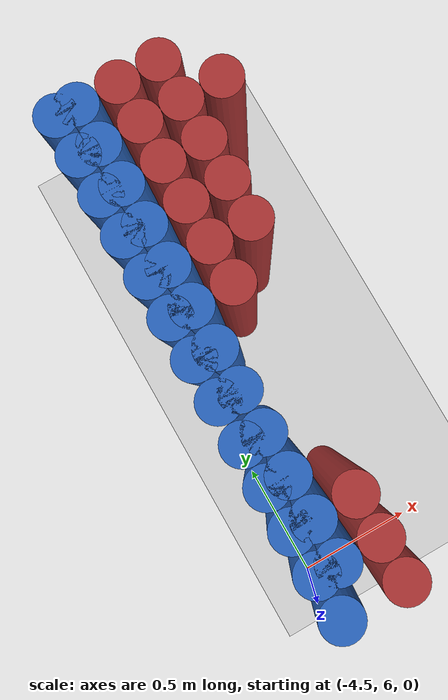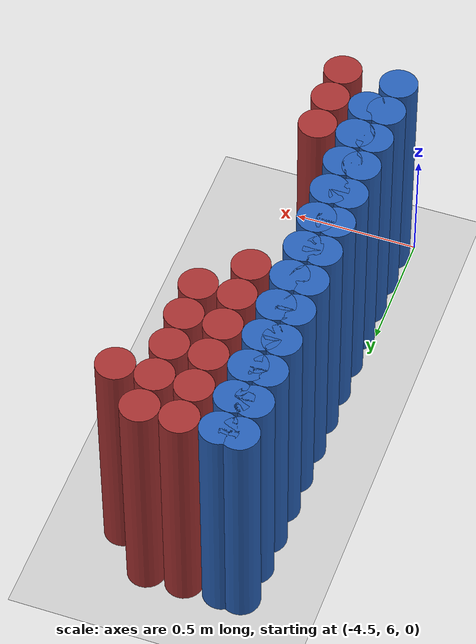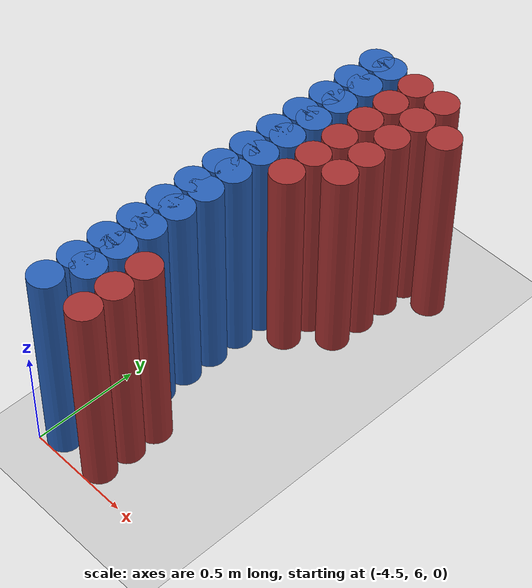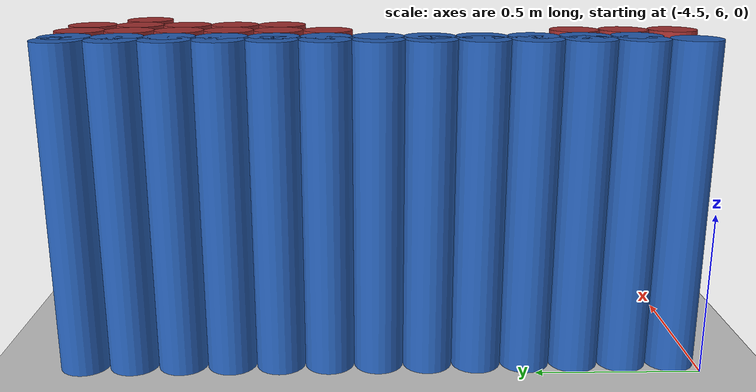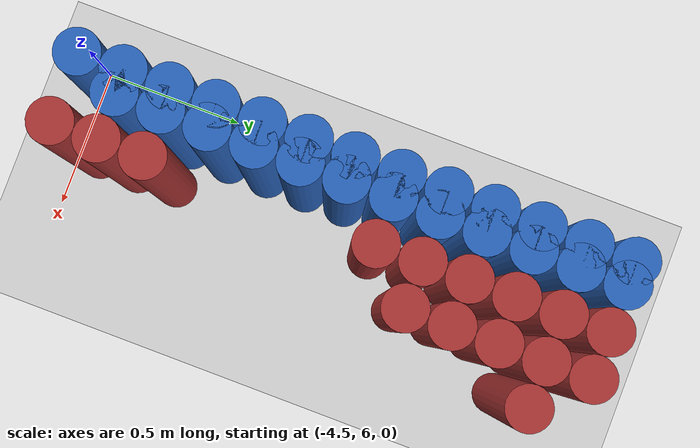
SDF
<sdf version="1.6">
 <world name="barn_world">
  <model name="ground_plane">
   <static>1</static>
   <link name="link">
    <collision name="collision">
     <geometry><plane><normal>0 0 1</normal><size>100 100</size></plane></geometry>
    </collision>
    <visual name="visual">
     <geometry><plane><normal>0 0 1</normal><size>100 100</size></plane></geometry>
     <material>
      <script><uri>file://media/materials/scripts/gazebo.material</uri><name>Gazebo/Grey</name></script>
     </material>
    </visual>
   </link>
  </model>
  <model name="unit_cylinder_133">
   <static>1</static>
   <pose>-4.3500 6.2250 0.5 0 0 0</pose>
   <link name="link">
    <collision name="collision">
     <geometry><cylinder><radius>0.075</radius><length>1</length></cylinder></geometry>
    </collision>
    <visual name="visual">
     <geometry><cylinder><radius>0.075</radius><length>1</length></cylinder></geometry>
     <material><ambient>0.152 0.379 0.72 1</ambient><diffuse>0.152 0.379 0.72 1</diffuse></material>
    </visual>
   </link>
  </model>
  <model name="unit_cylinder_134">
   <static>1</static>
   <pose>-4.3500 6.3750 0.5 0 0 0</pose>
   <link name="link">
    <collision name="collision">
     <geometry><cylinder><radius>0.075</radius><length>1</length></cylinder></geometry>
    </collision>
    <visual name="visual">
     <geometry><cylinder><radius>0.075</radius><length>1</length></cylinder></geometry>
     <material><ambient>0.152 0.379 0.72 1</ambient><diffuse>0.152 0.379 0.72 1</diffuse></material>
    </visual>
   </link>
  </model>
  <model name="unit_cylinder_135">
   <static>1</static>
   <pose>-4.3500 6.5250 0.5 0 0 0</pose>
   <link name="link">
    <collision name="collision">
     <geometry><cylinder><radius>0.075</radius><length>1</length></cylinder></geometry>
    </collision>
    <visual name="visual">
     <geometry><cylinder><radius>0.075</radius><length>1</length></cylinder></geometry>
     <material><ambient>0.152 0.379 0.72 1</ambient><diffuse>0.152 0.379 0.72 1</diffuse></material>
    </visual>
   </link>
  </model>
  <model name="unit_cylinder_136">
   <static>1</static>
   <pose>-4.3500 6.6750 0.5 0 0 0</pose>
   <link name="link">
    <collision name="collision">
     <geometry><cylinder><radius>0.075</radius><length>1</length></cylinder></geometry>
    </collision>
    <visual name="visual">
     <geometry><cylinder><radius>0.075</radius><length>1</length></cylinder></geometry>
     <material><ambient>0.152 0.379 0.72 1</ambient><diffuse>0.152 0.379 0.72 1</diffuse></material>
    </visual>
   </link>
  </model>
  <model name="unit_cylinder_137">
   <static>1</static>
   <pose>-4.3500 6.8250 0.5 0 0 0</pose>
   <link name="link">
    <collision name="collision">
     <geometry><cylinder><radius>0.075</radius><length>1</length></cylinder></geometry>
    </collision>
    <visual name="visual">
     <geometry><cylinder><radius>0.075</radius><length>1</length></cylinder></geometry>
     <material><ambient>0.152 0.379 0.72 1</ambient><diffuse>0.152 0.379 0.72 1</diffuse></material>
    </visual>
   </link>
  </model>
  <model name="unit_cylinder_138">
   <static>1</static>
   <pose>-4.3500 6.9750 0.5 0 0 0</pose>
   <link name="link">
    <collision name="collision">
     <geometry><cylinder><radius>0.075</radius><length>1</length></cylinder></geometry>
    </collision>
    <visual name="visual">
     <geometry><cylinder><radius>0.075</radius><length>1</length></cylinder></geometry>
     <material><ambient>0.152 0.379 0.72 1</ambient><diffuse>0.152 0.379 0.72 1</diffuse></material>
    </visual>
   </link>
  </model>
  <model name="unit_cylinder_139">
   <static>1</static>
   <pose>-4.3500 7.1250 0.5 0 0 0</pose>
   <link name="link">
    <collision name="collision">
     <geometry><cylinder><radius>0.075</radius><length>1</length></cylinder></geometry>
    </collision>
    <visual name="visual">
     <geometry><cylinder><radius>0.075</radius><length>1</length></cylinder></geometry>
     <material><ambient>0.152 0.379 0.72 1</ambient><diffuse>0.152 0.379 0.72 1</diffuse></material>
    </visual>
   </link>
  </model>
  <model name="unit_cylinder_140">
   <static>1</static>
   <pose>-4.3500 7.2750 0.5 0 0 0</pose>
   <link name="link">
    <collision name="collision">
     <geometry><cylinder><radius>0.075</radius><length>1</length></cylinder></geometry>
    </collision>
    <visual name="visual">
     <geometry><cylinder><radius>0.075</radius><length>1</length></cylinder></geometry>
     <material><ambient>0.152 0.379 0.72 1</ambient><diffuse>0.152 0.379 0.72 1</diffuse></material>
    </visual>
   </link>
  </model>
  <model name="unit_cylinder_141">
   <static>1</static>
   <pose>-4.3500 7.4250 0.5 0 0 0</pose>
   <link name="link">
    <collision name="collision">
     <geometry><cylinder><radius>0.075</radius><length>1</length></cylinder></geometry>
    </collision>
    <visual name="visual">
     <geometry><cylinder><radius>0.075</radius><length>1</length></cylinder></geometry>
     <material><ambient>0.152 0.379 0.72 1</ambient><diffuse>0.152 0.379 0.72 1</diffuse></material>
    </visual>
   </link>
  </model>
  <model name="unit_cylinder_142">
   <static>1</static>
   <pose>-4.3500 7.5750 0.5 0 0 0</pose>
   <link name="link">
    <collision name="collision">
     <geometry><cylinder><radius>0.075</radius><length>1</length></cylinder></geometry>
    </collision>
    <visual name="visual">
     <geometry><cylinder><radius>0.075</radius><length>1</length></cylinder></geometry>
     <material><ambient>0.152 0.379 0.72 1</ambient><diffuse>0.152 0.379 0.72 1</diffuse></material>
    </visual>
   </link>
  </model>
  <model name="unit_cylinder_143">
   <static>1</static>
   <pose>-4.3500 7.7250 0.5 0 0 0</pose>
   <link name="link">
    <collision name="collision">
     <geometry><cylinder><radius>0.075</radius><length>1</length></cylinder></geometry>
    </collision>
    <visual name="visual">
     <geometry><cylinder><radius>0.075</radius><length>1</length></cylinder></geometry>
     <material><ambient>0.152 0.379 0.72 1</ambient><diffuse>0.152 0.379 0.72 1</diffuse></material>
    </visual>
   </link>
  </model>
  <model name="unit_cylinder_144">
   <static>1</static>
   <pose>-4.3500 7.8750 0.5 0 0 0</pose>
   <link name="link">
    <collision name="collision">
     <geometry><cylinder><radius>0.075</radius><length>1</length></cylinder></geometry>
    </collision>
    <visual name="visual">
     <geometry><cylinder><radius>0.075</radius><length>1</length></cylinder></geometry>
     <material><ambient>0.152 0.379 0.72 1</ambient><diffuse>0.152 0.379 0.72 1</diffuse></material>
    </visual>
   </link>
  </model>
  <model name="unit_cylinder_158">
   <static>1</static>
   <pose>-4.2000 6.0750 0.5 0 0 0</pose>
   <link name="link">
    <collision name="collision">
     <geometry><cylinder><radius>0.075</radius><length>1</length></cylinder></geometry>
    </collision>
    <visual name="visual">
     <geometry><cylinder><radius>0.075</radius><length>1</length></cylinder></geometry>
     <material><ambient>0.648 0.192 0.192 1</ambient><diffuse>0.648 0.192 0.192 1</diffuse></material>
    </visual>
   </link>
  </model>
  <model name="unit_cylinder_159">
   <static>1</static>
   <pose>-4.2000 6.2250 0.5 0 0 0</pose>
   <link name="link">
    <collision name="collision">
     <geometry><cylinder><radius>0.075</radius><length>1</length></cylinder></geometry>
    </collision>
    <visual name="visual">
     <geometry><cylinder><radius>0.075</radius><length>1</length></cylinder></geometry>
     <material><ambient>0.648 0.192 0.192 1</ambient><diffuse>0.648 0.192 0.192 1</diffuse></material>
    </visual>
   </link>
  </model>
  <model name="unit_cylinder_160">
   <static>1</static>
   <pose>-4.2000 6.3750 0.5 0 0 0</pose>
   <link name="link">
    <collision name="collision">
     <geometry><cylinder><radius>0.075</radius><length>1</length></cylinder></geometry>
    </collision>
    <visual name="visual">
     <geometry><cylinder><radius>0.075</radius><length>1</length></cylinder></geometry>
     <material><ambient>0.648 0.192 0.192 1</ambient><diffuse>0.648 0.192 0.192 1</diffuse></material>
    </visual>
   </link>
  </model>
  <model name="unit_cylinder_161">
   <static>1</static>
   <pose>-4.2000 7.1250 0.5 0 0 0</pose>
   <link name="link">
    <collision name="collision">
     <geometry><cylinder><radius>0.075</radius><length>1</length></cylinder></geometry>
    </collision>
    <visual name="visual">
     <geometry><cylinder><radius>0.075</radius><length>1</length></cylinder></geometry>
     <material><ambient>0.648 0.192 0.192 1</ambient><diffuse>0.648 0.192 0.192 1</diffuse></material>
    </visual>
   </link>
  </model>
  <model name="unit_cylinder_162">
   <static>1</static>
   <pose>-4.2000 7.2750 0.5 0 0 0</pose>
   <link name="link">
    <collision name="collision">
     <geometry><cylinder><radius>0.075</radius><length>1</length></cylinder></geometry>
    </collision>
    <visual name="visual">
     <geometry><cylinder><radius>0.075</radius><length>1</length></cylinder></geometry>
     <material><ambient>0.648 0.192 0.192 1</ambient><diffuse>0.648 0.192 0.192 1</diffuse></material>
    </visual>
   </link>
  </model>
  <model name="unit_cylinder_163">
   <static>1</static>
   <pose>-4.2000 7.4250 0.5 0 0 0</pose>
   <link name="link">
    <collision name="collision">
     <geometry><cylinder><radius>0.075</radius><length>1</length></cylinder></geometry>
    </collision>
    <visual name="visual">
     <geometry><cylinder><radius>0.075</radius><length>1</length></cylinder></geometry>
     <material><ambient>0.648 0.192 0.192 1</ambient><diffuse>0.648 0.192 0.192 1</diffuse></material>
    </visual>
   </link>
  </model>
  <model name="unit_cylinder_164">
   <static>1</static>
   <pose>-4.2000 7.5750 0.5 0 0 0</pose>
   <link name="link">
    <collision name="collision">
     <geometry><cylinder><radius>0.075</radius><length>1</length></cylinder></geometry>
    </collision>
    <visual name="visual">
     <geometry><cylinder><radius>0.075</radius><length>1</length></cylinder></geometry>
     <material><ambient>0.648 0.192 0.192 1</ambient><diffuse>0.648 0.192 0.192 1</diffuse></material>
    </visual>
   </link>
  </model>
  <model name="unit_cylinder_165">
   <static>1</static>
   <pose>-4.2000 7.7250 0.5 0 0 0</pose>
   <link name="link">
    <collision name="collision">
     <geometry><cylinder><radius>0.075</radius><length>1</length></cylinder></geometry>
    </collision>
    <visual name="visual">
     <geometry><cylinder><radius>0.075</radius><length>1</length></cylinder></geometry>
     <material><ambient>0.648 0.192 0.192 1</ambient><diffuse>0.648 0.192 0.192 1</diffuse></material>
    </visual>
   </link>
  </model>
  <model name="unit_cylinder_166">
   <static>1</static>
   <pose>-4.2000 7.8750 0.5 0 0 0</pose>
   <link name="link">
    <collision name="collision">
     <geometry><cylinder><radius>0.075</radius><length>1</length></cylinder></geometry>
    </collision>
    <visual name="visual">
     <geometry><cylinder><radius>0.075</radius><length>1</length></cylinder></geometry>
     <material><ambient>0.648 0.192 0.192 1</ambient><diffuse>0.648 0.192 0.192 1</diffuse></material>
    </visual>
   </link>
  </model>
  <model name="unit_cylinder_172">
   <static>1</static>
   <pose>-4.0500 7.2750 0.5 0 0 0</pose>
   <link name="link">
    <collision name="collision">
     <geometry><cylinder><radius>0.075</radius><length>1</length></cylinder></geometry>
    </collision>
    <visual name="visual">
     <geometry><cylinder><radius>0.075</radius><length>1</length></cylinder></geometry>
     <material><ambient>0.648 0.192 0.192 1</ambient><diffuse>0.648 0.192 0.192 1</diffuse></material>
    </visual>
   </link>
  </model>
  <model name="unit_cylinder_173">
   <static>1</static>
   <pose>-4.0500 7.4250 0.5 0 0 0</pose>
   <link name="link">
    <collision name="collision">
     <geometry><cylinder><radius>0.075</radius><length>1</length></cylinder></geometry>
    </collision>
    <visual name="visual">
     <geometry><cylinder><radius>0.075</radius><length>1</length></cylinder></geometry>
     <material><ambient>0.648 0.192 0.192 1</ambient><diffuse>0.648 0.192 0.192 1</diffuse></material>
    </visual>
   </link>
  </model>
  <model name="unit_cylinder_174">
   <static>1</static>
   <pose>-4.0500 7.5750 0.5 0 0 0</pose>
   <link name="link">
    <collision name="collision">
     <geometry><cylinder><radius>0.075</radius><length>1</length></cylinder></geometry>
    </collision>
    <visual name="visual">
     <geometry><cylinder><radius>0.075</radius><length>1</length></cylinder></geometry>
     <material><ambient>0.648 0.192 0.192 1</ambient><diffuse>0.648 0.192 0.192 1</diffuse></material>
    </visual>
   </link>
  </model>
  <model name="unit_cylinder_175">
   <static>1</static>
   <pose>-4.0500 7.7250 0.5 0 0 0</pose>
   <link name="link">
    <collision name="collision">
     <geometry><cylinder><radius>0.075</radius><length>1</length></cylinder></geometry>
    </collision>
    <visual name="visual">
     <geometry><cylinder><radius>0.075</radius><length>1</length></cylinder></geometry>
     <material><ambient>0.648 0.192 0.192 1</ambient><diffuse>0.648 0.192 0.192 1</diffuse></material>
    </visual>
   </link>
  </model>
  <model name="unit_cylinder_176">
   <static>1</static>
   <pose>-4.0500 7.8750 0.5 0 0 0</pose>
   <link name="link">
    <collision name="collision">
     <geometry><cylinder><radius>0.075</radius><length>1</length></cylinder></geometry>
    </collision>
    <visual name="visual">
     <geometry><cylinder><radius>0.075</radius><length>1</length></cylinder></geometry>
     <material><ambient>0.648 0.192 0.192 1</ambient><diffuse>0.648 0.192 0.192 1</diffuse></material>
    </visual>
   </link>
  </model>
  <model name="unit_cylinder_177">
   <static>1</static>
   <pose>-3.9000 7.7250 0.5 0 0 0</pose>
   <link name="link">
    <collision name="collision">
     <geometry><cylinder><radius>0.075</radius><length>1</length></cylinder></geometry>
    </collision>
    <visual name="visual">
     <geometry><cylinder><radius>0.075</radius><length>1</length></cylinder></geometry>
     <material><ambient>0.648 0.192 0.192 1</ambient><diffuse>0.648 0.192 0.192 1</diffuse></material>
    </visual>
   </link>
  </model>
  <model name="unit_cylinder_275">
   <static>1</static>
   <pose>-4.4250 6.0750 0.5 0 0 0</pose>
   <link name="link">
    <collision name="collision">
     <geometry><cylinder><radius>0.075</radius><length>1</length></cylinder></geometry>
    </collision>
    <visual name="visual">
     <geometry><cylinder><radius>0.075</radius><length>1</length></cylinder></geometry>
     <material><ambient>0.152 0.379 0.72 1</ambient><diffuse>0.152 0.379 0.72 1</diffuse></material>
    </visual>
   </link>
  </model>
  <model name="unit_cylinder_277">
   <static>1</static>
   <pose>-4.4250 6.2250 0.5 0 0 0</pose>
   <link name="link">
    <collision name="collision">
     <geometry><cylinder><radius>0.075</radius><length>1</length></cylinder></geometry>
    </collision>
    <visual name="visual">
     <geometry><cylinder><radius>0.075</radius><length>1</length></cylinder></geometry>
     <material><ambient>0.152 0.379 0.72 1</ambient><diffuse>0.152 0.379 0.72 1</diffuse></material>
    </visual>
   </link>
  </model>
  <model name="unit_cylinder_279">
   <static>1</static>
   <pose>-4.4250 6.3750 0.5 0 0 0</pose>
   <link name="link">
    <collision name="collision">
     <geometry><cylinder><radius>0.075</radius><length>1</length></cylinder></geometry>
    </collision>
    <visual name="visual">
     <geometry><cylinder><radius>0.075</radius><length>1</length></cylinder></geometry>
     <material><ambient>0.152 0.379 0.72 1</ambient><diffuse>0.152 0.379 0.72 1</diffuse></material>
    </visual>
   </link>
  </model>
  <model name="unit_cylinder_281">
   <static>1</static>
   <pose>-4.4250 6.5250 0.5 0 0 0</pose>
   <link name="link">
    <collision name="collision">
     <geometry><cylinder><radius>0.075</radius><length>1</length></cylinder></geometry>
    </collision>
    <visual name="visual">
     <geometry><cylinder><radius>0.075</radius><length>1</length></cylinder></geometry>
     <material><ambient>0.152 0.379 0.72 1</ambient><diffuse>0.152 0.379 0.72 1</diffuse></material>
    </visual>
   </link>
  </model>
  <model name="unit_cylinder_283">
   <static>1</static>
   <pose>-4.4250 6.6750 0.5 0 0 0</pose>
   <link name="link">
    <collision name="collision">
     <geometry><cylinder><radius>0.075</radius><length>1</length></cylinder></geometry>
    </collision>
    <visual name="visual">
     <geometry><cylinder><radius>0.075</radius><length>1</length></cylinder></geometry>
     <material><ambient>0.152 0.379 0.72 1</ambient><diffuse>0.152 0.379 0.72 1</diffuse></material>
    </visual>
   </link>
  </model>
  <model name="unit_cylinder_285">
   <static>1</static>
   <pose>-4.4250 6.8250 0.5 0 0 0</pose>
   <link name="link">
    <collision name="collision">
     <geometry><cylinder><radius>0.075</radius><length>1</length></cylinder></geometry>
    </collision>
    <visual name="visual">
     <geometry><cylinder><radius>0.075</radius><length>1</length></cylinder></geometry>
     <material><ambient>0.152 0.379 0.72 1</ambient><diffuse>0.152 0.379 0.72 1</diffuse></material>
    </visual>
   </link>
  </model>
  <model name="unit_cylinder_287">
   <static>1</static>
   <pose>-4.4250 6.9750 0.5 0 0 0</pose>
   <link name="link">
    <collision name="collision">
     <geometry><cylinder><radius>0.075</radius><length>1</length></cylinder></geometry>
    </collision>
    <visual name="visual">
     <geometry><cylinder><radius>0.075</radius><length>1</length></cylinder></geometry>
     <material><ambient>0.152 0.379 0.72 1</ambient><diffuse>0.152 0.379 0.72 1</diffuse></material>
    </visual>
   </link>
  </model>
  <model name="unit_cylinder_289">
   <static>1</static>
   <pose>-4.4250 7.1250 0.5 0 0 0</pose>
   <link name="link">
    <collision name="collision">
     <geometry><cylinder><radius>0.075</radius><length>1</length></cylinder></geometry>
    </collision>
    <visual name="visual">
     <geometry><cylinder><radius>0.075</radius><length>1</length></cylinder></geometry>
     <material><ambient>0.152 0.379 0.72 1</ambient><diffuse>0.152 0.379 0.72 1</diffuse></material>
    </visual>
   </link>
  </model>
  <model name="unit_cylinder_291">
   <static>1</static>
   <pose>-4.4250 7.2750 0.5 0 0 0</pose>
   <link name="link">
    <collision name="collision">
     <geometry><cylinder><radius>0.075</radius><length>1</length></cylinder></geometry>
    </collision>
    <visual name="visual">
     <geometry><cylinder><radius>0.075</radius><length>1</length></cylinder></geometry>
     <material><ambient>0.152 0.379 0.72 1</ambient><diffuse>0.152 0.379 0.72 1</diffuse></material>
    </visual>
   </link>
  </model>
  <model name="unit_cylinder_293">
   <static>1</static>
   <pose>-4.4250 7.4250 0.5 0 0 0</pose>
   <link name="link">
    <collision name="collision">
     <geometry><cylinder><radius>0.075</radius><length>1</length></cylinder></geometry>
    </collision>
    <visual name="visual">
     <geometry><cylinder><radius>0.075</radius><length>1</length></cylinder></geometry>
     <material><ambient>0.152 0.379 0.72 1</ambient><diffuse>0.152 0.379 0.72 1</diffuse></material>
    </visual>
   </link>
  </model>
  <model name="unit_cylinder_295">
   <static>1</static>
   <pose>-4.4250 7.5750 0.5 0 0 0</pose>
   <link name="link">
    <collision name="collision">
     <geometry><cylinder><radius>0.075</radius><length>1</length></cylinder></geometry>
    </collision>
    <visual name="visual">
     <geometry><cylinder><radius>0.075</radius><length>1</length></cylinder></geometry>
     <material><ambient>0.152 0.379 0.72 1</ambient><diffuse>0.152 0.379 0.72 1</diffuse></material>
    </visual>
   </link>
  </model>
  <model name="unit_cylinder_297">
   <static>1</static>
   <pose>-4.4250 7.7250 0.5 0 0 0</pose>
   <link name="link">
    <collision name="collision">
     <geometry><cylinder><radius>0.075</radius><length>1</length></cylinder></geometry>
    </collision>
    <visual name="visual">
     <geometry><cylinder><radius>0.075</radius><length>1</length></cylinder></geometry>
     <material><ambient>0.152 0.379 0.72 1</ambient><diffuse>0.152 0.379 0.72 1</diffuse></material>
    </visual>
   </link>
  </model>
  <model name="unit_cylinder_299">
   <static>1</static>
   <pose>-4.4250 7.8750 0.5 0 0 0</pose>
   <link name="link">
    <collision name="collision">
     <geometry><cylinder><radius>0.075</radius><length>1</length></cylinder></geometry>
    </collision>
    <visual name="visual">
     <geometry><cylinder><radius>0.075</radius><length>1</length></cylinder></geometry>
     <material><ambient>0.152 0.379 0.72 1</ambient><diffuse>0.152 0.379 0.72 1</diffuse></material>
    </visual>
   </link>
  </model>
 </world>
</sdf>
